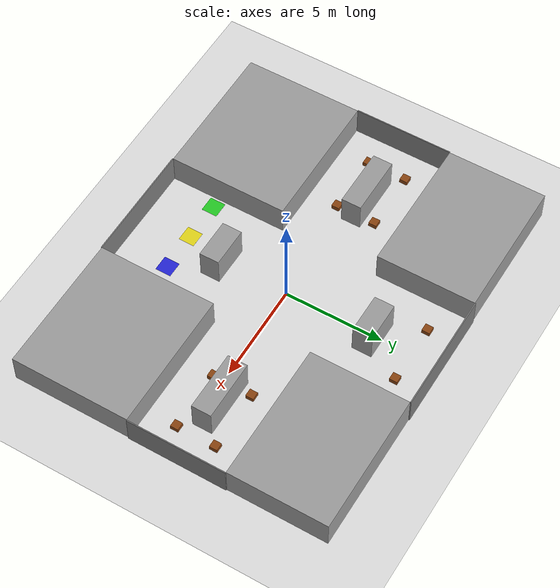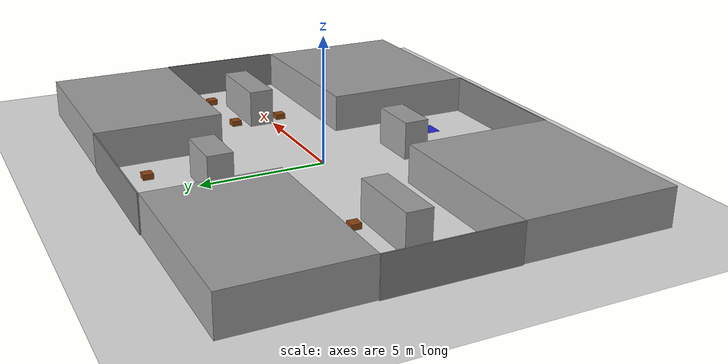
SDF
<?xml version="1.0" ?>
<sdf version="1.6">
  <world name="warehouse_cross">

    <!-- ==================== 光照 ==================== -->
    <light name="sun" type="directional">
      <cast_shadows>1</cast_shadows>
      <pose>0 0 10 0 0 0</pose>
      <diffuse>0.8 0.8 0.8 1</diffuse>
      <specular>0.2 0.2 0.2 1</specular>
      <attenuation>
        <range>1000</range>
        <constant>0.9</constant>
        <linear>0.01</linear>
        <quadratic>0.001</quadratic>
      </attenuation>
      <direction>-0.5 0.1 -0.9</direction>
    </light>

    <!-- ==================== 地面 ==================== -->
    <model name="ground_plane">
      <static>true</static>
      <link name="link">
        <collision name="collision">
          <geometry>
            <plane><normal>0 0 1</normal><size>100 100</size></plane>
          </geometry>
          <surface>
            <friction><ode><mu>100</mu><mu2>50</mu2></ode></friction>
          </surface>
        </collision>
        <visual name="visual">
          <cast_shadows>false</cast_shadows>
          <geometry>
            <plane><normal>0 0 1</normal><size>100 100</size></plane>
          </geometry>
          <material>
            <ambient>0.88 0.88 0.88 1</ambient>
            <diffuse>0.88 0.88 0.88 1</diffuse>
          </material>
        </visual>
      </link>
    </model>

    <!-- ==================== 物理参数 ==================== -->
    <physics name="default_physics" default="0" type="ode">
      <gravity>0 0 -9.8</gravity>
      <ode>
        <solver>
          <type>quick</type>
          <iters>50</iters>
          <sor>1.3</sor>
        </solver>
        <constraints>
          <cfm>0</cfm>
          <erp>0.2</erp>
          <contact_max_correcting_vel>100</contact_max_correcting_vel>
          <contact_surface_layer>0.001</contact_surface_layer>
        </constraints>
      </ode>
      <real_time_update_rate>1000</real_time_update_rate>
      <max_step_size>0.001</max_step_size>
    </physics>

    <!-- ==================== 外围封闭边界 ==================== -->
    <!-- 北侧通道顶部封边（y=8，x=-3~3） -->
    <model name="boundary_north">
      <static>true</static>
      <pose>0.0 8.025 0.75 0 0 0</pose>
      <link name="link">
        <collision name="col"><geometry><box><size>6.0 0.05 1.5</size></box></geometry></collision>
        <visual name="vis">
          <geometry><box><size>6.0 0.05 1.5</size></box></geometry>
          <material><ambient>0.5 0.5 0.5 1</ambient><diffuse>0.5 0.5 0.5 1</diffuse></material>
        </visual>
      </link>
    </model>

    <!-- 南侧通道底部封边（y=-8，x=-3~3） -->
    <model name="boundary_south">
      <static>true</static>
      <pose>0.0 -8.025 0.75 0 0 0</pose>
      <link name="link">
        <collision name="col"><geometry><box><size>6.0 0.05 1.5</size></box></geometry></collision>
        <visual name="vis">
          <geometry><box><size>6.0 0.05 1.5</size></box></geometry>
          <material><ambient>0.5 0.5 0.5 1</ambient><diffuse>0.5 0.5 0.5 1</diffuse></material>
        </visual>
      </link>
    </model>

    <!-- 西侧横臂封边（x=-10，y=-2.5~2.5） -->
    <model name="boundary_west">
      <static>true</static>
      <pose>-10.025 0.5 0.75 0 0 0</pose>
      <link name="link">
        <collision name="col"><geometry><box><size>0.05 5.0 1.5</size></box></geometry></collision>
        <visual name="vis">
          <geometry><box><size>0.05 5.0 1.5</size></box></geometry>
          <material><ambient>0.5 0.5 0.5 1</ambient><diffuse>0.5 0.5 0.5 1</diffuse></material>
        </visual>
      </link>
    </model>

    <!-- 东侧横臂封边（x=10，y=-2.5~2.5） -->
    <model name="boundary_east">
      <static>true</static>
      <pose>10.025 0.5 0.75 0 0 0</pose>
      <link name="link">
        <collision name="col"><geometry><box><size>0.05 5.0 1.5</size></box></geometry></collision>
        <visual name="vis">
          <geometry><box><size>0.05 5.0 1.5</size></box></geometry>
          <material><ambient>0.5 0.5 0.5 1</ambient><diffuse>0.5 0.5 0.5 1</diffuse></material>
        </visual>
      </link>
    </model>

    <!-- ==================== 主体墙块 ==================== -->

    <!-- NW 墙块：x=[-10,-3], y=[3,8] -->
    <model name="wall_nw">
      <static>true</static>
      <pose>-6.5 5.5 0.75 0 0 0</pose>
      <link name="link">
        <collision name="col"><geometry><box><size>7.0 5.0 1.5</size></box></geometry></collision>
        <visual name="vis">
          <geometry><box><size>7.0 5.0 1.5</size></box></geometry>
          <material><ambient>0.62 0.62 0.62 1</ambient><diffuse>0.62 0.62 0.62 1</diffuse></material>
        </visual>
      </link>
    </model>

    <!-- NE 墙块：x=[3,10], y=[3,8] -->
    <model name="wall_ne">
      <static>true</static>
      <pose>6.5 5.5 0.75 0 0 0</pose>
      <link name="link">
        <collision name="col"><geometry><box><size>7.0 5.0 1.5</size></box></geometry></collision>
        <visual name="vis">
          <geometry><box><size>7.0 5.0 1.5</size></box></geometry>
          <material><ambient>0.62 0.62 0.62 1</ambient><diffuse>0.62 0.62 0.62 1</diffuse></material>
        </visual>
      </link>
    </model>

    <!-- 北瓶颈隔墙：x=[-1,1], y=[3,4] -->
    <model name="wall_n_btl">
      <static>true</static>
      <pose>0.0 4.5 0.75 0 0 0</pose>
      <link name="link">
        <collision name="col"><geometry><box><size>2.0 1.0 1.5</size></box></geometry></collision>
        <visual name="vis">
          <geometry><box><size>2.0 1.0 1.5</size></box></geometry>
          <material><ambient>0.62 0.62 0.62 1</ambient><diffuse>0.62 0.62 0.62 1</diffuse></material>
        </visual>
      </link>
    </model>

    <!-- SW 墙块：x=[-10,-3], y=[-8,-2] -->
    <model name="wall_sw">
      <static>true</static>
      <pose>-6.5 -5.0 0.75 0 0 0</pose>
      <link name="link">
        <collision name="col"><geometry><box><size>7.0 6.0 1.5</size></box></geometry></collision>
        <visual name="vis">
          <geometry><box><size>7.0 6.0 1.5</size></box></geometry>
          <material><ambient>0.62 0.62 0.62 1</ambient><diffuse>0.62 0.62 0.62 1</diffuse></material>
        </visual>
      </link>
    </model>

    <!-- SE 墙块：x=[3,10], y=[-8,-2] -->
    <model name="wall_se">
      <static>true</static>
      <pose>6.5 -5.0 0.75 0 0 0</pose>
      <link name="link">
        <collision name="col"><geometry><box><size>7.0 6.0 1.5</size></box></geometry></collision>
        <visual name="vis">
          <geometry><box><size>7.0 6.0 1.5</size></box></geometry>
          <material><ambient>0.62 0.62 0.62 1</ambient><diffuse>0.62 0.62 0.62 1</diffuse></material>
        </visual>
      </link>
    </model>

    <!-- 南瓶颈隔墙：x=[-1,1], y=[-4,-3] -->
    <model name="wall_s_btl">
      <static>true</static>
      <pose>0.0 -3.5 0.75 0 0 0</pose>
      <link name="link">
        <collision name="col"><geometry><box><size>2.0 1.0 1.5</size></box></geometry></collision>
        <visual name="vis">
          <geometry><box><size>2.0 1.0 1.5</size></box></geometry>
          <material><ambient>0.62 0.62 0.62 1</ambient><diffuse>0.62 0.62 0.62 1</diffuse></material>
        </visual>
      </link>
    </model>

    <!-- 西走廊隔墙：x=[-8,-5], y=[0,1] -->
    <model name="wall_corridor_w">
      <static>true</static>
      <pose>-6.5 0.5 0.75 0 0 0</pose>
      <link name="link">
        <collision name="col"><geometry><box><size>3.0 1.0 1.5</size></box></geometry></collision>
        <visual name="vis">
          <geometry><box><size>3.0 1.0 1.5</size></box></geometry>
          <material><ambient>0.62 0.62 0.62 1</ambient><diffuse>0.62 0.62 0.62 1</diffuse></material>
        </visual>
      </link>
    </model>

    <!-- 东走廊隔墙：x=[5,8], y=[0,1] -->
    <model name="wall_corridor_e">
      <static>true</static>
      <pose>6.5 0.5 0.75 0 0 0</pose>
      <link name="link">
        <collision name="col"><geometry><box><size>3.0 1.0 1.5</size></box></geometry></collision>
        <visual name="vis">
          <geometry><box><size>3.0 1.0 1.5</size></box></geometry>
          <material><ambient>0.62 0.62 0.62 1</ambient><diffuse>0.62 0.62 0.62 1</diffuse></material>
        </visual>
      </link>
    </model>

    <!-- ==================== 货架（10个）==================== -->

    <!-- shelf_0: (-1.5, 6.5) -->
    <model name="shelf_0">
      <static>true</static>
      <pose>-1.5 6.5 0.11 0 0 0</pose>
      <link name="link">
        <collision name="col"><geometry><box><size>0.4 0.4 0.22</size></box></geometry></collision>
        <visual name="vis">
          <geometry><box><size>0.4 0.4 0.22</size></box></geometry>
          <material><ambient>0.55 0.27 0.07 1</ambient><diffuse>0.55 0.27 0.07 1</diffuse></material>
        </visual>
      </link>
    </model>

    <!-- shelf_1: (1.5, 6.5) -->
    <model name="shelf_1">
      <static>true</static>
      <pose>1.5 6.5 0.11 0 0 0</pose>
      <link name="link">
        <collision name="col"><geometry><box><size>0.4 0.4 0.22</size></box></geometry></collision>
        <visual name="vis">
          <geometry><box><size>0.4 0.4 0.22</size></box></geometry>
          <material><ambient>0.55 0.27 0.07 1</ambient><diffuse>0.55 0.27 0.07 1</diffuse></material>
        </visual>
      </link>
    </model>

    <!-- shelf_2: (-8.5, 1.5) -->
    <model name="shelf_2">
      <static>true</static>
      <pose>-8.5 1.5 0.11 0 0 0</pose>
      <link name="link">
        <collision name="col"><geometry><box><size>0.4 0.4 0.22</size></box></geometry></collision>
        <visual name="vis">
          <geometry><box><size>0.4 0.4 0.22</size></box></geometry>
          <material><ambient>0.55 0.27 0.07 1</ambient><diffuse>0.55 0.27 0.07 1</diffuse></material>
        </visual>
      </link>
    </model>

    <!-- shelf_3: (-5.5, 1.5) -->
    <model name="shelf_3">
      <static>true</static>
      <pose>-5.5 1.5 0.11 0 0 0</pose>
      <link name="link">
        <collision name="col"><geometry><box><size>0.4 0.4 0.22</size></box></geometry></collision>
        <visual name="vis">
          <geometry><box><size>0.4 0.4 0.22</size></box></geometry>
          <material><ambient>0.55 0.27 0.07 1</ambient><diffuse>0.55 0.27 0.07 1</diffuse></material>
        </visual>
      </link>
    </model>

    <!-- shelf_4: (-8.5, -0.5) -->
    <model name="shelf_4">
      <static>true</static>
      <pose>-8.5 -0.5 0.11 0 0 0</pose>
      <link name="link">
        <collision name="col"><geometry><box><size>0.4 0.4 0.22</size></box></geometry></collision>
        <visual name="vis">
          <geometry><box><size>0.4 0.4 0.22</size></box></geometry>
          <material><ambient>0.55 0.27 0.07 1</ambient><diffuse>0.55 0.27 0.07 1</diffuse></material>
        </visual>
      </link>
    </model>

    <!-- shelf_5: (-5.5, -0.5) -->
    <model name="shelf_5">
      <static>true</static>
      <pose>-5.5 -0.5 0.11 0 0 0</pose>
      <link name="link">
        <collision name="col"><geometry><box><size>0.4 0.4 0.22</size></box></geometry></collision>
        <visual name="vis">
          <geometry><box><size>0.4 0.4 0.22</size></box></geometry>
          <material><ambient>0.55 0.27 0.07 1</ambient><diffuse>0.55 0.27 0.07 1</diffuse></material>
        </visual>
      </link>
    </model>

    <!-- shelf_6: (5.5, 1.5) -->
    <model name="shelf_6">
      <static>true</static>
      <pose>5.5 1.5 0.11 0 0 0</pose>
      <link name="link">
        <collision name="col"><geometry><box><size>0.4 0.4 0.22</size></box></geometry></collision>
        <visual name="vis">
          <geometry><box><size>0.4 0.4 0.22</size></box></geometry>
          <material><ambient>0.55 0.27 0.07 1</ambient><diffuse>0.55 0.27 0.07 1</diffuse></material>
        </visual>
      </link>
    </model>

    <!-- shelf_7: (8.5, 1.5) -->
    <model name="shelf_7">
      <static>true</static>
      <pose>8.5 1.5 0.11 0 0 0</pose>
      <link name="link">
        <collision name="col"><geometry><box><size>0.4 0.4 0.22</size></box></geometry></collision>
        <visual name="vis">
          <geometry><box><size>0.4 0.4 0.22</size></box></geometry>
          <material><ambient>0.55 0.27 0.07 1</ambient><diffuse>0.55 0.27 0.07 1</diffuse></material>
        </visual>
      </link>
    </model>

    <!-- shelf_8: (5.5, -0.5) -->
    <model name="shelf_8">
      <static>true</static>
      <pose>5.5 -0.5 0.11 0 0 0</pose>
      <link name="link">
        <collision name="col"><geometry><box><size>0.4 0.4 0.22</size></box></geometry></collision>
        <visual name="vis">
          <geometry><box><size>0.4 0.4 0.22</size></box></geometry>
          <material><ambient>0.55 0.27 0.07 1</ambient><diffuse>0.55 0.27 0.07 1</diffuse></material>
        </visual>
      </link>
    </model>

    <!-- shelf_9: (8.5, -0.5) -->
    <model name="shelf_9">
      <static>true</static>
      <pose>8.5 -0.5 0.11 0 0 0</pose>
      <link name="link">
        <collision name="col"><geometry><box><size>0.4 0.4 0.22</size></box></geometry></collision>
        <visual name="vis">
          <geometry><box><size>0.4 0.4 0.22</size></box></geometry>
          <material><ambient>0.55 0.27 0.07 1</ambient><diffuse>0.55 0.27 0.07 1</diffuse></material>
        </visual>
      </link>
    </model>

    <!-- ==================== 投递区（纯视觉，无碰撞）==================== -->

    <!-- delivery_A: (-2.5, -5.5)，绿色 -->
    <model name="delivery_A">
      <static>true</static>
      <pose>-2.5 -5.5 0.001 0 0 0</pose>
      <link name="link">
        <visual name="vis">
          <geometry><box><size>0.8 0.8 0.002</size></box></geometry>
          <material>
            <ambient>0.15 0.80 0.15 1</ambient>
            <diffuse>0.15 0.80 0.15 1</diffuse>
          </material>
        </visual>
      </link>
    </model>

    <!-- delivery_B: (-0.5, -5.5)，黄色 -->
    <model name="delivery_B">
      <static>true</static>
      <pose>-0.5 -5.5 0.001 0 0 0</pose>
      <link name="link">
        <visual name="vis">
          <geometry><box><size>0.8 0.8 0.002</size></box></geometry>
          <material>
            <ambient>0.90 0.85 0.10 1</ambient>
            <diffuse>0.90 0.85 0.10 1</diffuse>
          </material>
        </visual>
      </link>
    </model>

    <!-- delivery_C: (1.5, -5.5)，蓝色 -->
    <model name="delivery_C">
      <static>true</static>
      <pose>1.5 -5.5 0.001 0 0 0</pose>
      <link name="link">
        <visual name="vis">
          <geometry><box><size>0.8 0.8 0.002</size></box></geometry>
          <material>
            <ambient>0.15 0.15 0.85 1</ambient>
            <diffuse>0.15 0.15 0.85 1</diffuse>
          </material>
        </visual>
      </link>
    </model>

  </world>
</sdf>
